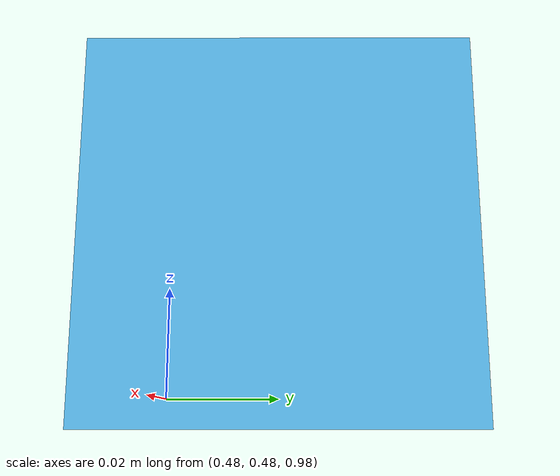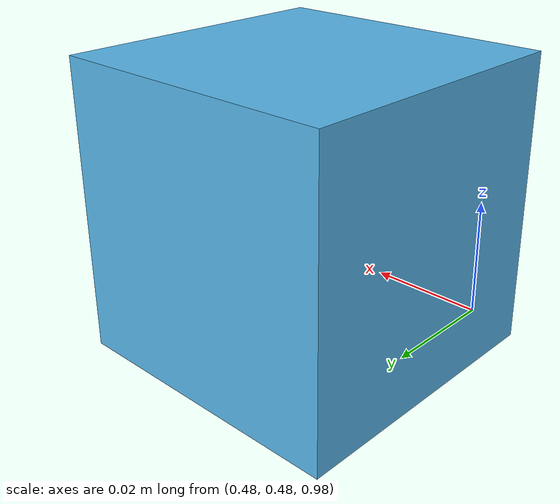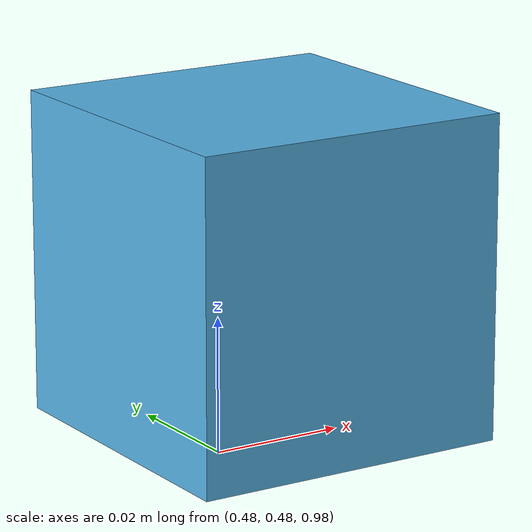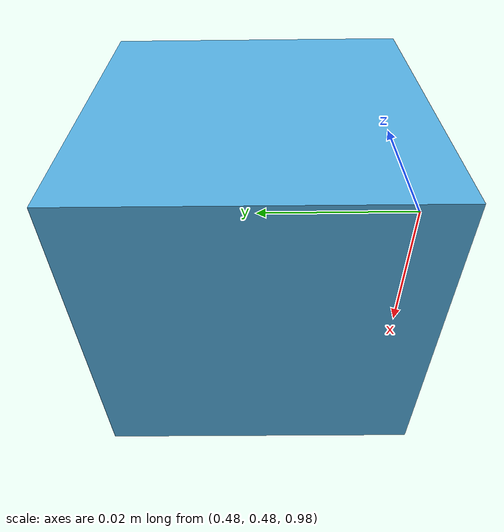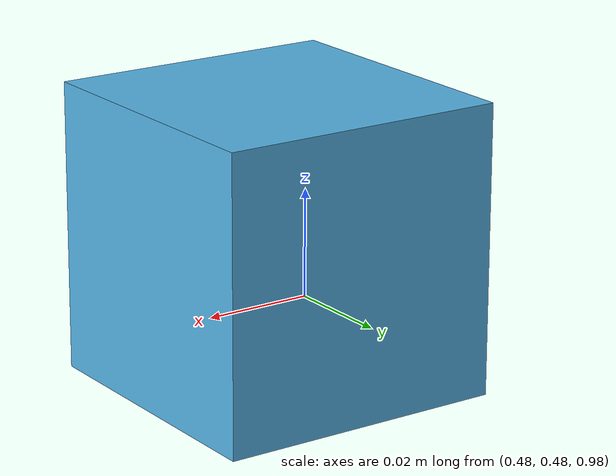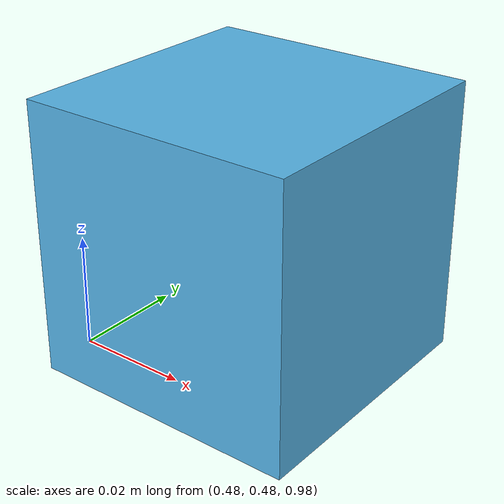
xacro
<?xml version="1.0"?>
<robot xmlns:xacro="http://wiki.ros.org/xacro" name="camera">

  <link name="world"/>

  <link name="camera_link">
    <visual>
      <geometry>
        <box size="0.05 0.05 0.05"/>
      </geometry>
    </visual>
  </link>

  <joint name="camera_joint" type="fixed">
    <origin xyz="0.5 0.5 1.0" rpy="0.0 0.0 0.0"/>
    <parent link="world"/>
    <child link="camera_link"/>
  </joint>

  <!-- Gazebo plugin -->
  <gazebo reference="camera_link">
    <sensor type="depth" name="depth_camera">
      <always_on>true</always_on>
      <update_rate>30.0</update_rate>
      <visualize>false</visualize>
      <camera>
        <horizontal_fov>1.047</horizontal_fov>
        <image>
          <width>640</width>
          <height>480</height>
          <format>B8G8R8</format>
        </image>
        <depth_camera></depth_camera>
        <clip>
          <near>0.1</near>
          <far>10.0</far>
        </clip>
      </camera>
      <plugin name="camera_plugin" filename="libgazebo_ros_camera.so">
        <ros>
          <namespace>camera</namespace>
          <remapping>image_raw:=/camera/image_raw</remapping>
          <remapping>depth/image_raw:=/camera/depth/image_raw</remapping>
          <remapping>camera_info:=/camera/camera_info</remapping>
          <remapping>points:=/camera/points</remapping>
        </ros>
        <camera_name>camera</camera_name>
        <frame_name>camera_link</frame_name>
        <min_depth>0.1</min_depth>
        <max_depth>10.0</max_depth>
      </plugin>
    </sensor>
  </gazebo>

</robot>
